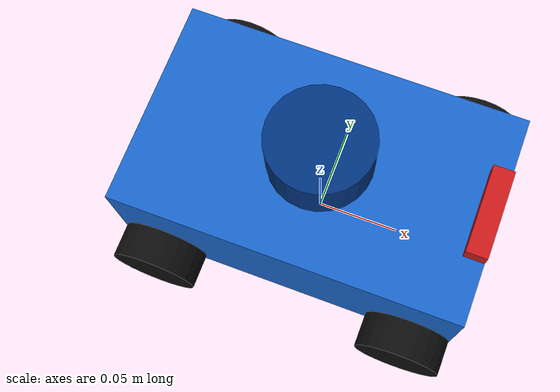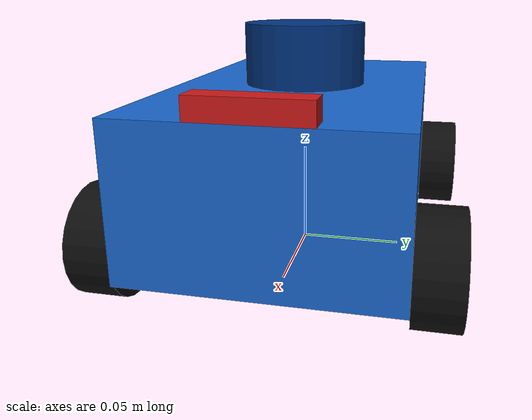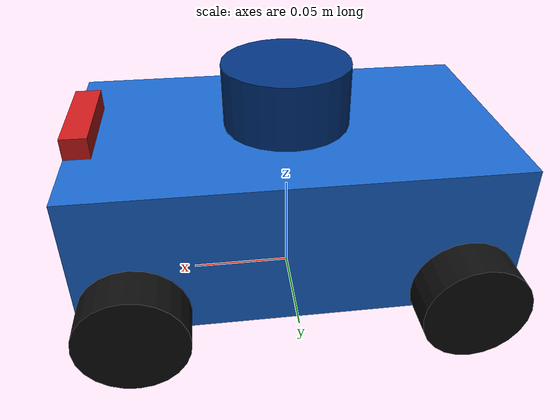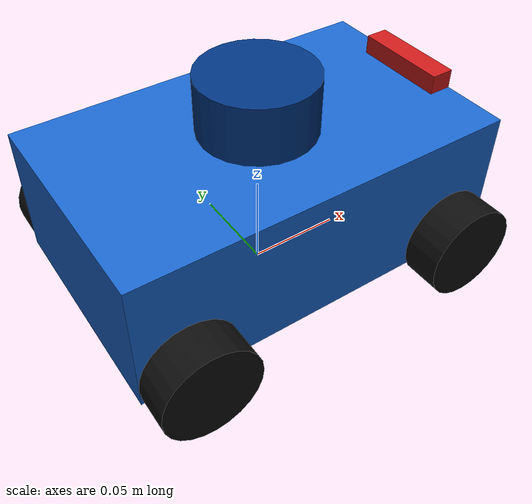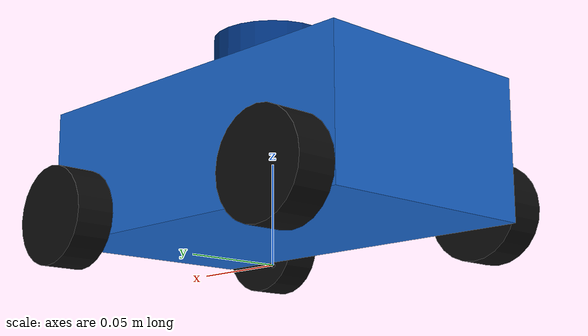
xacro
<?xml version="1.0"?>
<robot name="four_wheel_sensor_robot" xmlns:xacro="http://wiki.ros.org/xacro">
    <xacro:include filename="four_wheel_robot_base.urdf.xacro"/>
    <xacro:include filename="four_wheel_robot_camera.urdf.xacro"/>
    <xacro:include filename="four_wheel_robot_lidar.urdf.xacro"/>
</robot>

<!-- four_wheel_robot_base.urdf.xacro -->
<robot xmlns:xacro="http://wiki.ros.org/xacro">
    <xacro:property name="PI" value="3.1415927"/>
    <xacro:property name="base_length" value="0.20"/>
    <xacro:property name="base_width" value="0.12"/>
    <xacro:property name="base_height" value="0.07"/>
    <xacro:property name="ground_clearance" value="0.015"/>
    <xacro:property name="wheel_radius" value="0.025"/>
    <xacro:property name="wheel_width" value="0.02"/>

    <material name="chassis_blue">
        <color rgba="0.1 0.4 0.8 1.0"/>
    </material>

    <material name="wheel_black">
        <color rgba="0.05 0.05 0.05 1.0"/>
    </material>

    <material name="sensor_red">
        <color rgba="0.8 0.1 0.1 1.0"/>
    </material>

    <material name="lidar_blue">
        <color rgba="0.0 0.2 0.5 1.0"/>
    </material>

    <link name="base_footprint">
        <visual>
            <geometry>
                <sphere radius="0.001"/>
            </geometry>
            <material name="wheel_black"/>
        </visual>
    </link>

    <link name="base_link">
        <visual>
            <geometry>
                <box size="${base_length} ${base_width} ${base_height}"/>
            </geometry>
            <material name="chassis_blue"/>
        </visual>
    </link>

    <joint name="base_joint" type="fixed">
        <parent link="base_footprint"/>
        <child link="base_link"/>
        <origin xyz="0.0 0.0 ${ground_clearance + base_height / 2}" rpy="0.0 0.0 0.0"/>
    </joint>

    <xacro:macro name="wheel" params="wheel_name x_sign y_sign">
        <link name="${wheel_name}_wheel_link">
            <visual>
                <geometry>
                    <cylinder radius="${wheel_radius}" length="${wheel_width}"/>
                </geometry>
                <origin xyz="0.0 0.0 0.0" rpy="${PI / 2} 0.0 0.0"/>
                <material name="wheel_black"/>
            </visual>
        </link>

        <joint name="${wheel_name}_wheel_joint" type="continuous">
            <parent link="base_link"/>
            <child link="${wheel_name}_wheel_link"/>
            <origin
                xyz="${(base_length / 2 - wheel_radius) * x_sign} ${(base_width / 2 + wheel_width / 2) * y_sign} ${wheel_radius - ground_clearance - base_height / 2}"
                rpy="0.0 0.0 0.0"/>
            <axis xyz="0.0 1.0 0.0"/>
        </joint>
    </xacro:macro>

    <xacro:wheel wheel_name="front_left" x_sign="1" y_sign="1"/>
    <xacro:wheel wheel_name="front_right" x_sign="1" y_sign="-1"/>
    <xacro:wheel wheel_name="rear_left" x_sign="-1" y_sign="1"/>
    <xacro:wheel wheel_name="rear_right" x_sign="-1" y_sign="-1"/>
</robot>

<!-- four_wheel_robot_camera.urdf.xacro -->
<robot xmlns:xacro="http://wiki.ros.org/xacro">
    <xacro:property name="camera_length" value="0.012"/>
    <xacro:property name="camera_width" value="0.05"/>
    <xacro:property name="camera_height" value="0.01"/>
    <xacro:property name="camera_x" value="${base_length / 2 - camera_length / 2}"/>
    <xacro:property name="camera_z" value="${base_height / 2 + camera_height / 2}"/>

    <link name="camera_link">
        <visual>
            <geometry>
                <box size="${camera_length} ${camera_width} ${camera_height}"/>
            </geometry>
            <material name="sensor_red"/>
        </visual>
    </link>

    <joint name="camera_joint" type="fixed">
        <parent link="base_link"/>
        <child link="camera_link"/>
        <origin xyz="${camera_x} 0.0 ${camera_z}" rpy="0.0 0.0 0.0"/>
    </joint>
</robot>

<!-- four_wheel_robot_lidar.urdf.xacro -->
<robot xmlns:xacro="http://wiki.ros.org/xacro">
    <xacro:property name="lidar_radius" value="0.03"/>
    <xacro:property name="lidar_height" value="0.03"/>
    <xacro:property name="lidar_z" value="${base_height / 2 + lidar_height / 2}"/>

    <link name="lidar_link">
        <visual>
            <geometry>
                <cylinder radius="${lidar_radius}" length="${lidar_height}"/>
            </geometry>
            <material name="lidar_blue"/>
        </visual>
    </link>

    <joint name="lidar_joint" type="fixed">
        <parent link="base_link"/>
        <child link="lidar_link"/>
        <origin xyz="0.0 0.0 ${lidar_z}" rpy="0.0 0.0 0.0"/>
    </joint>
</robot>
